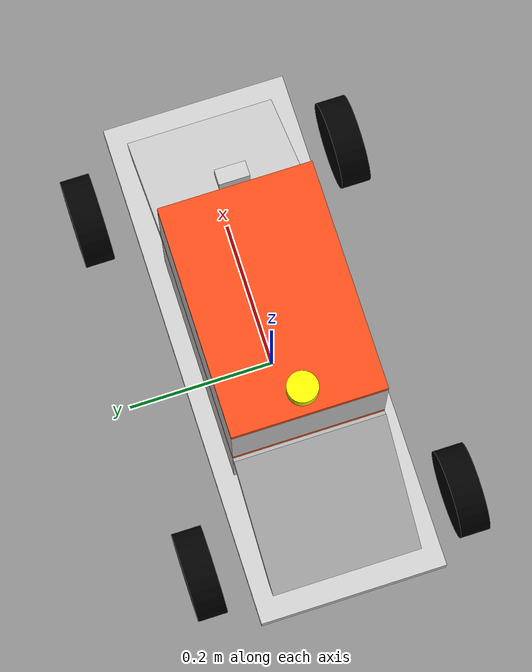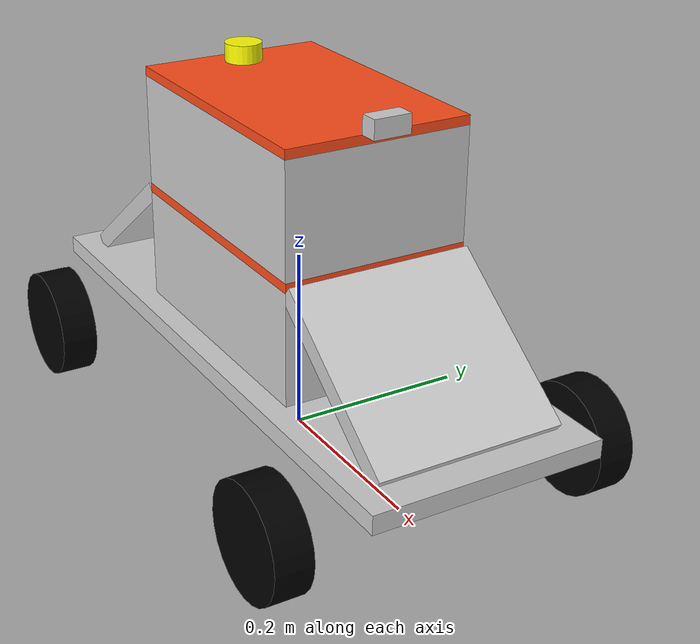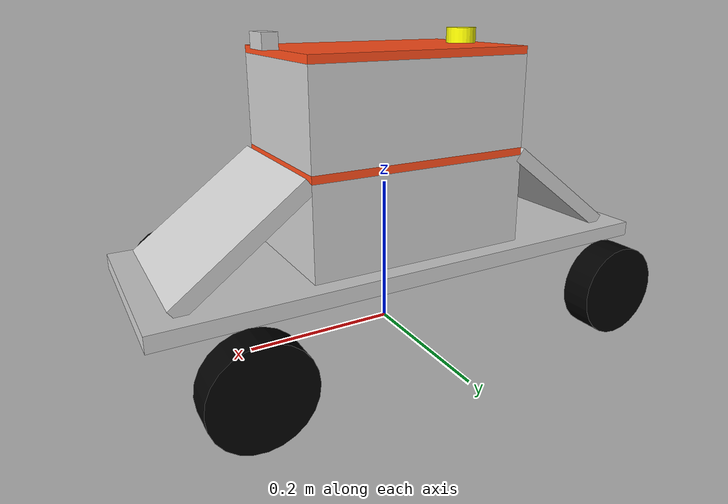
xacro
<?xml version="1.0"?>
<robot xmlns:xacro="http://www.ros.org/wiki/xacro" name="my_car">

    <xacro:property name="wheel_offset_y" value="0.18"/>
    <xacro:property name="wheel_offset_x" value="0.25"/>
    <xacro:property name="wheel_radius" value="0.06"/>
    <xacro:property name="wheel_width" value="0.04"/>
    <xacro:property name="wheel_drop" value="0.05"/>

    <xacro:property name="base_width" value="0.25"/>
    <xacro:property name="base_length" value="0.69"/>
    <xacro:property name="base_thickness" value="0.02"/>

    <xacro:property name="stack_length" value="0.30"/>
    <xacro:property name="stack_width" value="0.20"/>
    <xacro:property name="level_1_height" value="0.12"/>
    <xacro:property name="level_2_height" value="0.12"/>
    <xacro:property name="platform_thickness" value="0.01"/>

    <xacro:property name="ramp_length" value="0.20"/>
    <xacro:property name="ramp_rise" value="${level_1_height}"/>
    <xacro:property name="ramp_run" value="${sqrt(ramp_length*ramp_length - ramp_rise*ramp_rise)}"/>
    <xacro:property name="ramp_angle" value="${atan2(ramp_rise, ramp_run)}"/>

    <material name="white"><color rgba="1 1 1 0.8"/></material>
    <material name="orange"><color rgba="1 0.3 0.1 1"/></material>
    <material name="blue"><color rgba="0.2 0.2 1 1"/></material>
    <material name="black"><color rgba="0 0 0 1"/></material>
    <material name="grey"><color rgba="0.5 0.5 0.5 1"/></material>
    <material name="metal"><color rgba="0.8 0.8 0.8 1"/></material>
    <material name="red"><color rgba="1 0 0 1"/></material>
    <material name="purple"><color rgba="1 0 1 1"/></material>
    <material name="yellow"><color rgba="1 1 0 1"/></material>

    <xacro:macro name="box_inertia" params="m l w h">
        <inertial>
            <origin xyz="0 0 0" rpy="0 0 0"/>
            <mass value="${m}"/>
            <inertia ixx="${(m/12) * (h*h + l*l)}" ixy="0.0" ixz="0.0" iyy="${(m/12) * (w*w + l*l)}" iyz="0.0" izz="${(m/12) * (w*w + h*h)}"/>
        </inertial>
    </xacro:macro>

    <xacro:macro name="cylinder_inertia" params="m r h">
        <inertial>
            <origin xyz="0 0 0" rpy="0 0 0"/>
            <mass value="${m}"/>
            <inertia ixx="${(m/12) * (3*r*r + h*h)}" ixy = "0" ixz = "0" iyy="${(m/12) * (3*r*r + h*h)}" iyz = "0" izz="${(m/2) * (r*r)}"/>
        </inertial>
    </xacro:macro>

    <link name="base_link"></link>

    <joint name="supreme_base_joint" type="fixed">
        <parent link="base_link"/>
        <child link="supreme_base"/>
        <origin xyz="0 0 ${wheel_radius + wheel_drop}"/>
    </joint>

    <link name="supreme_base">
        <visual><geometry><box size="${base_length} ${base_width} ${base_thickness}"/></geometry><material name="metal"/></visual>
        <collision><geometry><box size="${base_length} ${base_width} ${base_thickness}"/></geometry></collision>
        <xacro:box_inertia m="2.0" l="${base_length}" w="${base_width}" h="${base_thickness}"/>
    </link>

    <joint name="level_1_joint" type="fixed">
        <parent link="supreme_base"/>
        <child link="level_1"/>
        <origin xyz="0 0 ${base_thickness/2 + level_1_height/2}"/>
    </joint>
    <link name="level_1">
        <visual><geometry><box size="${stack_length} ${stack_width} ${level_1_height}"/></geometry><material name="metal"/></visual>
        <collision><geometry><box size="${stack_length} ${stack_width} ${level_1_height}"/></geometry></collision>
        <xacro:box_inertia m="2.0" l="${stack_length}" w="${stack_width}" h="${level_1_height}"/>
    </link>

    <joint name="front_ramp_joint" type="fixed">
        <parent link="supreme_base"/>
        <child link="front_ramp"/>
        <origin xyz="${stack_length/2 + ramp_run/2} 0 ${base_thickness/2 + ramp_rise/2}" rpy="0 ${ramp_angle} 0"/>
    </joint>
    <link name="front_ramp">
        <visual><geometry><box size="${ramp_length} ${stack_width} 0.02"/></geometry><material name="metal"/></visual>
        <collision><geometry><box size="${ramp_length} ${stack_width} 0.02"/></geometry></collision>
    </link>

    <joint name="rear_ramp_joint" type="fixed">
        <parent link="supreme_base"/>
        <child link="rear_ramp"/>
        <origin xyz="-${stack_length/2 + ramp_run/2} 0 ${base_thickness/2 + ramp_rise/2}" rpy="0 -${ramp_angle} 0"/>
    </joint>
    <link name="rear_ramp">
        <visual><geometry><box size="${ramp_length} ${stack_width} 0.02"/></geometry><material name="metal"/></visual>
        <collision><geometry><box size="${ramp_length} ${stack_width} 0.02"/></geometry></collision>
    </link>

    <joint name="platform1_joint" type="fixed">
        <parent link="level_1"/>
        <child link="platform_1"/>
        <origin xyz="0 0 ${level_1_height/2 + platform_thickness/2}"/>
    </joint>
    <link name="platform_1">
        <visual><geometry><box size="${stack_length} ${stack_width} ${platform_thickness}"/></geometry><material name="orange"/></visual>
    </link>

    <joint name="level_2_joint" type="fixed">
        <parent link="platform_1"/>
        <child link="level_2"/>
        <origin xyz="0 0 ${platform_thickness/2 + level_2_height/2}"/>
    </joint>
    <link name="level_2">
        <visual><geometry><box size="${stack_length} ${stack_width} ${level_2_height}"/></geometry><material name="metal"/></visual>
        <collision><geometry><box size="${stack_length} ${stack_width} ${level_2_height}"/></geometry></collision>
        <xacro:box_inertia m="1.0" l="${stack_length}" w="${stack_width}" h="${level_2_height}"/>
    </link>

    <joint name="roof_joint" type="fixed">
        <parent link="level_2"/>
        <child link="roof"/>
        <origin xyz="0 0 ${level_2_height/2 + platform_thickness/2}"/>
    </joint>
    <link name="roof">
        <visual><geometry><box size="${stack_length} ${stack_width} ${platform_thickness}"/></geometry><material name="orange"/></visual>
    </link>

    <xacro:macro name="rear_wheel" params="name x y">
        <link name="${name}_wheel">
            <visual><geometry><cylinder radius="${wheel_radius}" length="${wheel_width}"/></geometry><material name="black"/></visual>
            <collision><geometry><cylinder radius="${wheel_radius}" length="${wheel_width}"/></geometry></collision>
            <xacro:cylinder_inertia m="2.0" r="${wheel_radius}" h="${wheel_width}"/>
        </link>
        <joint name="${name}_wheel_joint" type="continuous">
            <parent link="supreme_base"/>
            <child link="${name}_wheel"/>
            <origin xyz="${x} ${y} -${wheel_drop}" rpy="-${pi/2} 0 0"/>
            <axis xyz="0 0 1"/>
            <dynamics damping="0.5" friction="0.2"/>
        </joint>
    </xacro:macro>
    <xacro:rear_wheel name="left_rear"   x="-${wheel_offset_x}" y="${wheel_offset_y}"/>
    <xacro:rear_wheel name="right_rear"  x="-${wheel_offset_x}" y="-${wheel_offset_y}"/>

    <xacro:macro name="front_wheel" params="name x y">
        <link name="${name}_wheel">
            <visual><geometry><cylinder radius="${wheel_radius}" length="${wheel_width}"/></geometry><material name="black"/></visual>
            <collision><geometry><sphere radius="${wheel_radius}"/></geometry></collision>
            <xacro:cylinder_inertia m="0.5" r="${wheel_radius}" h="${wheel_width}"/>
        </link>
        <joint name="${name}_wheel_joint" type="continuous">
            <parent link="supreme_base"/>
            <child link="${name}_wheel"/>
            <origin xyz="${x} ${y} -${wheel_drop}" rpy="-${pi/2} 0 0"/>
            <axis xyz="0 0 1"/>
            <dynamics damping="0.5" friction="0.2"/>
        </joint>
    </xacro:macro>
    <xacro:front_wheel name="left_front"  x="${wheel_offset_x}"  y="${wheel_offset_y}"/>
    <xacro:front_wheel name="right_front" x="${wheel_offset_x}"  y="-${wheel_offset_y}"/>

    <joint name="ultrasonic_joint" type="fixed">
        <parent link="roof"/>
        <child link="ultrasonic_link"/>
        <origin xyz="${stack_length/2 + 0.01} 0 0.015" rpy="0 0 0"/>
    </joint>
    <link name="ultrasonic_link">
        <visual>
            <geometry><box size="0.02 0.04 0.02"/></geometry>
            <material name="metal"/>
        </visual>
    </link>

    <joint name="imu_joint" type="fixed">
        <parent link="level_2"/>
        <child link="imu_link"/>
        <origin xyz="0 0 -0.034"/>
    </joint>
    <link name="imu_link">
        <visual><geometry><box size="0.05 0.05 0.05"/></geometry><material name="purple"/></visual>
    </link>

    <joint name="gps_joint" type="fixed">
        <parent link="roof"/>
        <child link="gps_link"/>
        <origin xyz="-0.12 0 0.015" rpy="0 0 0"/>
    </joint>
    <link name="gps_link">
        <visual><geometry><cylinder radius="0.02" length="0.02"/></geometry><material name="yellow"/></visual>
    </link>

    <gazebo>
        <plugin name="diff_drive" filename="libgazebo_ros_diff_drive.so">
            <left_joint>left_rear_wheel_joint</left_joint>
            <right_joint>right_rear_wheel_joint</right_joint>
            <wheel_separation>${2 * wheel_offset_y}</wheel_separation>
            <wheel_diameter>${2 * wheel_radius}</wheel_diameter>
            <max_wheel_torque>500</max_wheel_torque>
            <max_wheel_acceleration>10.0</max_wheel_acceleration>
            <odometry_frame>odom</odometry_frame>
            <robot_base_frame>base_link</robot_base_frame>
            <publish_odom>true</publish_odom>
            <publish_odom_tf>true</publish_odom_tf>
            <publish_wheel_tf>false</publish_wheel_tf>
        </plugin>

        <plugin name="gazebo_ros_joint_state_publisher" filename="libgazebo_ros_joint_state_publisher.so">
            <update_rate>50</update_rate>
            <joint_name>left_front_wheel_joint</joint_name>
            <joint_name>right_front_wheel_joint</joint_name>
            <joint_name>left_rear_wheel_joint</joint_name>
            <joint_name>right_rear_wheel_joint</joint_name>
        </plugin>
    </gazebo>

    <gazebo reference="ultrasonic_link">
        <sensor name="ultrasonic_sensor" type="ray">
            <always_on>true</always_on>
            <visualize>true</visualize>
            <update_rate>10.0</update_rate>
            <ray>
                <scan>
                    <horizontal>
                        <samples>30</samples>
                        <resolution>1</resolution>
                        <min_angle>-0.26</min_angle>
                        <max_angle>0.26</max_angle>
                    </horizontal>
                    <vertical>
                        <samples>1</samples> <resolution>1</resolution>
                        <min_angle>0</min_angle>
                        <max_angle>0</max_angle>
                    </vertical>
                </scan>
                <range>
                    <min>0.02</min>
                    <max>4.0</max>
                    <resolution>0.01</resolution>
                </range>
            </ray>
            <plugin name="ultrasonic_controller" filename="libgazebo_ros_ray_sensor.so">
                <ros>
                    <remapping>~/out:=/ultrasonic/scan</remapping>
                </ros>
                <output_type>sensor_msgs/LaserScan</output_type>
                <frame_name>ultrasonic_link</frame_name>
            </plugin>
        </sensor>
    </gazebo>

    <gazebo reference="imu_link">
        <gravity>true</gravity>
        <sensor name="imu_sensor" type="imu">
            <always_on>true</always_on>
            <update_rate>20</update_rate>
            <visualize>true</visualize>
            <topic>__default_topic__</topic>
            <plugin filename="libgazebo_ros_imu_sensor.so" name="imu_plugin">
                <topicName>imu</topicName>
                <bodyName>imu_link</bodyName>
                <updateRateHZ>20.0</updateRateHZ>
                <gaussianNoise>0.0</gaussianNoise>
                <xyzOffset>0 0 0</xyzOffset>
                <rpyOffset>0 0 0</rpyOffset>
                <frameName>imu_link</frameName>
                <initialOrientationAsReference>false</initialOrientationAsReference>
                <ros>
                    <remapping>~/out:=/imu</remapping>
                </ros>
            </plugin>
        </sensor>
    </gazebo>

    <gazebo reference="gps_link">
        <sensor name="gps_sensor" type="gps">
            <always_on>true</always_on>
            <update_rate>5.0</update_rate>
            <plugin name="gps_controller" filename="libgazebo_ros_gps_sensor.so">
                <ros>
                    <remapping>~/out:=/gps/fix</remapping>
                </ros>
                <output_type>sensor_msgs/NavSatFix</output_type>
                <frame_name>gps_link</frame_name>
            </plugin>
        </sensor>
    </gazebo>

    <gazebo reference="supreme_base"><material>Gazebo/Grey</material></gazebo>
    <gazebo reference="front_ramp"><material>Gazebo/Grey</material></gazebo>
    <gazebo reference="rear_ramp"><material>Gazebo/Grey</material></gazebo>
    <gazebo reference="level_1"><material>Gazebo/Grey</material></gazebo>
    <gazebo reference="level_2"><material>Gazebo/Grey</material></gazebo>
    <gazebo reference="platform_1"><material>Gazebo/Orange</material></gazebo>
    <gazebo reference="roof"><material>Gazebo/Orange</material></gazebo>

    <gazebo reference="ultrasonic_link"><material>Gazebo/Blue</material></gazebo>
    <gazebo reference="imu_link"><material>Gazebo/Purple</material></gazebo>
    <gazebo reference="gps_link"><material>Gazebo/Yellow</material></gazebo>

    <gazebo reference="left_rear_wheel">
        <material>Gazebo/FlatBlack</material>
        <mu1>1.0</mu1>
        <mu2>1.0</mu2>
        <kp>1000000.0</kp>
        <kd>100.0</kd>
    </gazebo>
    <gazebo reference="right_rear_wheel">
        <material>Gazebo/FlatBlack</material>
        <mu1>1.0</mu1>
        <mu2>1.0</mu2>
        <kp>1000000.0</kp>
        <kd>100.0</kd>
    </gazebo>
    <gazebo reference="left_front_wheel">
        <material>Gazebo/FlatBlack</material>
        <mu1>0.01</mu1> <mu2>0.01</mu2>
        <kp>1000000.0</kp>
        <kd>100.0</kd>
    </gazebo>

    <gazebo reference="right_front_wheel">
        <material>Gazebo/FlatBlack</material>
        <mu1>0.01</mu1> <mu2>0.01</mu2>
        <kp>1000000.0</kp>
        <kd>100.0</kd>
    </gazebo>

</robot>
